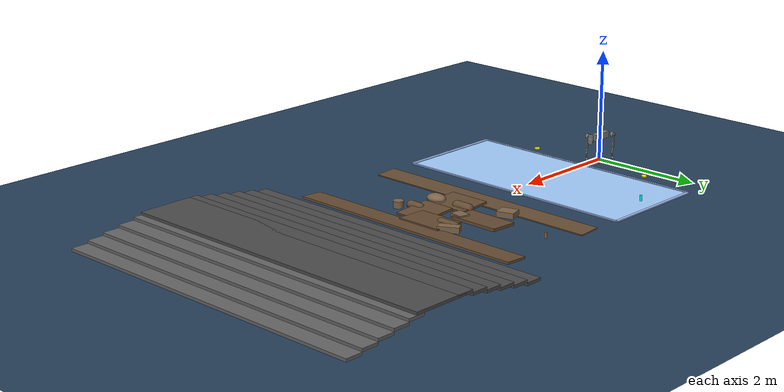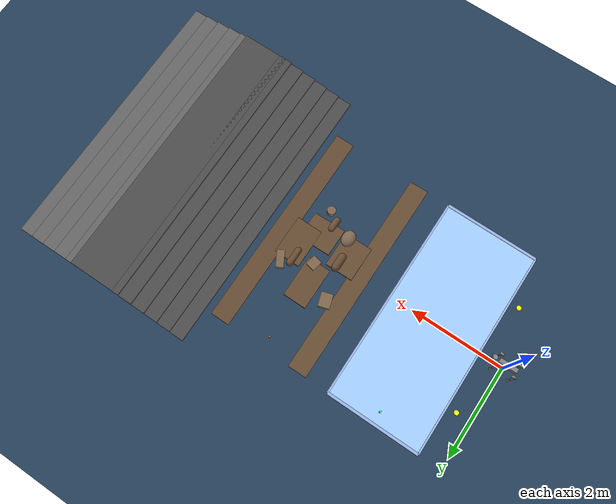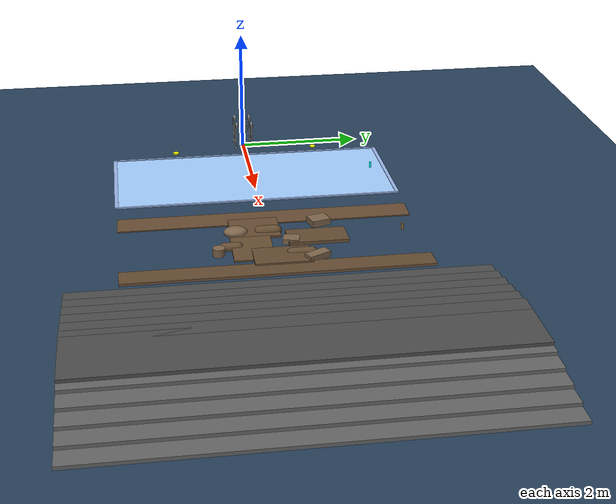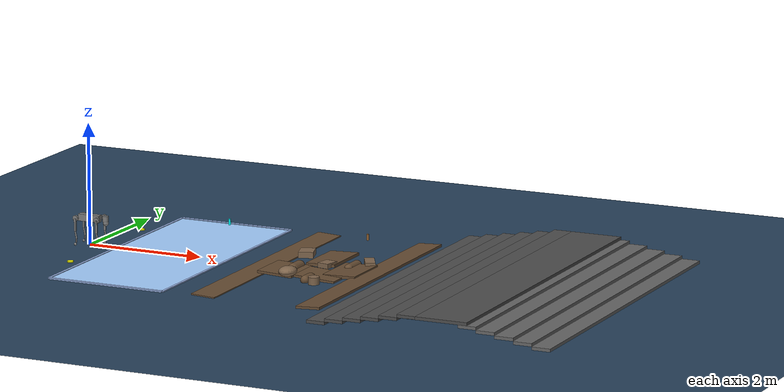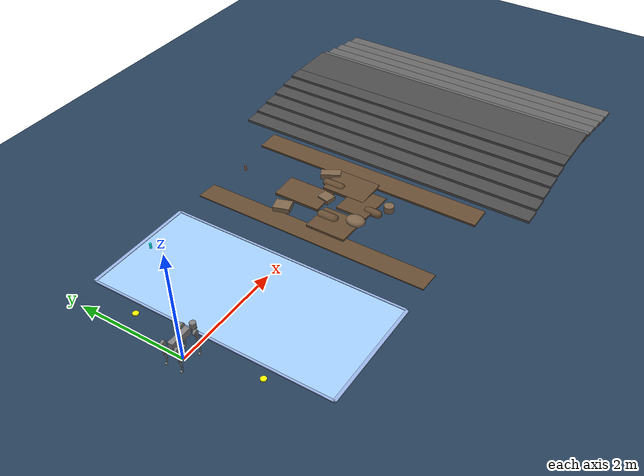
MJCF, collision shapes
<mujoco model="go2 ice scene">
  <include file="go2.xml"/>

  <statistic center="0 0 0.1" extent="0.8"/>

  <visual>
    <headlight diffuse="0.6 0.6 0.6" ambient="0.3 0.3 0.3" specular="0 0 0"/>
    <rgba haze="0.15 0.25 0.35 1"/>
    <global azimuth="-130" elevation="-20"/>
  </visual>

  <asset>
    <texture type="skybox" builtin="gradient" rgb1="0.3 0.5 0.7" rgb2="0 0 0" width="512" height="3072"/>
    <texture type="2d" name="groundplane" builtin="checker" mark="edge" rgb1="0.2 0.3 0.4" rgb2="0.1 0.2 0.3"
      markrgb="0.8 0.8 0.8" width="300" height="300"/>
    <material name="groundplane" texture="groundplane" texuniform="true" texrepeat="5 5" reflectance="0.2"/>

    <!-- Ice material -->
    <texture type="2d" name="ice_texture" builtin="flat" rgb1="0.8 0.9 1.0" width="100" height="100"/>
    <material name="ice" texture="ice_texture" rgba="0.8 0.9 1.0 0.9" reflectance="0.8" shininess="0.9"/>

    <!-- Ice border material -->
    <material name="ice_border" rgba="0.6 0.7 0.9 1" reflectance="0.3" shininess="0.5"/>

    <!-- Terrain materials -->
    <material name="terrain_rock" rgba="0.5 0.4 0.3 1" reflectance="0.1" shininess="0.2"/>
    <material name="terrain_dirt" rgba="0.4 0.3 0.2 1" reflectance="0.05" shininess="0.1"/>

    <!-- Stair materials -->
    <material name="stair_up" rgba="0.3 0.3 0.3 1" reflectance="0.05" shininess="0.1"/>
    <material name="stair_down" rgba="0.4 0.4 0.4 1" reflectance="0.05" shininess="0.1"/>
  </asset>

  <worldbody>
    <light pos="0 0 1.5" dir="0 0 -1" directional="true"/>
    <geom name="floor" size="0 0 0.05" type="plane" material="groundplane"/>

    <!-- Ice floor section with reduced but still low friction for better traversability -->
    <geom name="ice_floor" pos="1.5 0 0.001" type="box" size="1.0 2.25 0.005"
          material="ice" friction="0.12 0.08 0.004"/>

    <!-- Visual borders around ice -->
    <geom name="ice_border_1" pos="0.5 0 0.006" type="box" size="0.02 2.25 0.01"
          material="ice_border"/>
    <geom name="ice_border_2" pos="2.5 0 0.006" type="box" size="0.02 2.25 0.01"
          material="ice_border"/>
    <geom name="ice_border_3" pos="1.5 2.25 0.006" type="box" size="1.0 0.03 0.01"
          material="ice_border"/>
    <geom name="ice_border_4" pos="1.5 -2.25 0.006" type="box" size="1.0 0.03 0.01"
          material="ice_border"/>

    <!-- Ice warning signs (small visual markers) -->
    <geom name="warning_1" pos="0.3 1.2 0.02" type="cylinder" size="0.05 0.01"
          rgba="1 1 0 1"/>
    <geom name="warning_2" pos="0.3 -1.2 0.02" type="cylinder" size="0.05 0.01"
          rgba="1 1 0 1"/>

    <!-- UNEVEN TERRAIN SECTION (after ice) - Made more traversable -->
    <!-- Smaller rocks and obstacles -->
    <geom name="rock_1" pos="3.5 0.8 0.05" type="box" size="0.12 0.15 0.05"
          material="terrain_rock" euler="0 0 0.3"/>
    <geom name="rock_2" pos="3.8 -0.5 0.08" type="ellipsoid" size="0.14 0.18 0.08"
          material="terrain_rock"/>
    <geom name="rock_3" pos="4.1 0.3 0.04" type="box" size="0.10 0.12 0.04"
          material="terrain_rock" euler="0 0 -0.2"/>
    <geom name="rock_4" pos="4.4 -0.8 0.06" type="cylinder" size="0.09 0.06"
          material="terrain_rock"/>
    <geom name="rock_5" pos="4.7 0.6 0.05" type="box" size="0.08 0.18 0.05"
          material="terrain_rock" euler="0 0 0.5"/>

    <!-- Gentler ground patches with reduced slopes -->
    <geom name="patch_1" pos="3.6 -0.2 0.02" type="box" size="0.3 0.375 0.02"
          material="terrain_dirt" euler="0 0.05 0"/>
    <geom name="patch_2" pos="4.0 0.7 0.025" type="box" size="0.25 0.45 0.025"
          material="terrain_dirt" euler="0 -0.04 0"/>
    <geom name="patch_3" pos="4.3 -0.3 0.02" type="box" size="0.35 0.3 0.02"
          material="terrain_dirt" euler="0 0.06 0"/>
    <geom name="patch_4" pos="4.6 0.1 0.025" type="box" size="0.28 0.42 0.025"
          material="terrain_dirt" euler="0 -0.03 0"/>

    <!-- Smaller bumps -->
    <geom name="bump_1" pos="3.7 0.0 0.015" type="capsule" size="0.09 0.12"
          material="terrain_dirt" euler="1.57 0 0"/>
    <geom name="bump_2" pos="4.2 -0.6 0.02" type="capsule" size="0.075 0.10"
          material="terrain_dirt" euler="1.57 0 0.8"/>
    <geom name="bump_3" pos="4.5 0.4 0.02" type="capsule" size="0.075 0.15"
          material="terrain_dirt" euler="1.57 0 -0.4"/>

    <!-- Add transition ramps to make it easier to enter/exit this section -->
    <geom name="transition_ramp_1" pos="3.2 0 0.01" type="box" size="0.2 2.25 0.01"
          material="terrain_dirt" euler="0 0.05 0"/>
    <geom name="transition_ramp_2" pos="5.0 0 0.02" type="box" size="0.2 2.25 0.02"
          material="terrain_dirt" euler="0 -0.05 0"/>

    <!-- STAIRS SECTION - Reduced step height from 8cm to 5cm -->
    <!-- Ascending stairs with step height of 5 cm -->
    <geom name="stair_1" pos="5.5 0 0.025" type="box" size="0.15 3.0 0.025" material="stair_up"/>
    <geom name="stair_2" pos="5.8 0 0.075" type="box" size="0.15 3.0 0.025" material="stair_up"/>
    <geom name="stair_3" pos="6.1 0 0.125" type="box" size="0.15 3.0 0.025" material="stair_up"/>
    <geom name="stair_4" pos="6.4 0 0.175" type="box" size="0.15 3.0 0.025" material="stair_up"/>
    <geom name="stair_5" pos="6.7 0 0.225" type="box" size="0.15 3.0 0.025" material="stair_up"/>
    <geom name="stair_6" pos="7.0 0 0.275" type="box" size="0.15 3.0 0.025" material="stair_up"/>

    <!-- Platform at top -->
    <geom name="platform" pos="7.5 0 0.275" type="box" size="0.5 3.0 0.025" material="stair_up"/>

    <!-- Descending stairs -->
    <geom name="stair_d1" pos="8.0 0 0.225" type="box" size="0.15 3.0 0.025" material="stair_down"/>
    <geom name="stair_d2" pos="8.3 0 0.175" type="box" size="0.15 3.0 0.025" material="stair_down"/>
    <geom name="stair_d3" pos="8.6 0 0.125" type="box" size="0.15 3.0 0.025" material="stair_down"/>
    <geom name="stair_d4" pos="8.9 0 0.075" type="box" size="0.15 3.0 0.025" material="stair_down"/>
    <geom name="stair_d5" pos="9.2 0 0.025" type="box" size="0.15 3.0 0.025" material="stair_down"/>

    <!-- Section markers for navigation -->
    <geom name="marker_ice" pos="1.5 2.0 0.1" type="cylinder" size="0.02 0.05"
          rgba="0 1 1 1"/>
    <geom name="marker_terrain" pos="4.0 2.0 0.1" type="cylinder" size="0.02 0.05"
          rgba="0.6 0.4 0.2 1"/>
    <geom name="marker_stairs" pos="6.5 2.0 0.1" type="cylinder" size="0.02 0.05"
          rgba="0.5 0.5 0.5 1"/>
  </worldbody>
</mujoco>

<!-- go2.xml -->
<mujoco model="go2">
  <compiler angle="radian" meshdir="assets" autolimits="true" />

  <option cone="elliptic" impratio="100" />

  <default>
    <default class="go2">
      <geom friction="0.4" margin="0.001" condim="1"/>
      <joint axis="0 1 0" damping="0.1" armature="0.01" frictionloss="0.2"/>
      <motor ctrlrange="-23.7 23.7"/>
      <default class="abduction">
        <joint axis="1 0 0" range="-1.0472 1.0472"/>
      </default>
      <default class="hip">
        <default class="front_hip">
          <joint range="-1.5708 3.4907"/>
        </default>
        <default class="back_hip">
          <joint range="-0.5236 4.5379"/>
        </default>
      </default>
      <default class="knee">
        <joint range="-2.7227 -0.83776"/>
        <motor ctrlrange="-45.43 45.43"/>
      </default>
      <default class="visual">
        <geom type="mesh" contype="0" conaffinity="0" group="2"/>
      </default>
      <default class="collision">
        <geom group="3"/>
        <default class="foot">
          <geom size="0.022" pos="-0.002 0 -0.213" priority="1" condim="6"
            friction="0.4 0.02 0.01"/>
        </default>
      </default>
    </default>
  </default>

  <asset>
    <material name="metal" rgba=".9 .95 .95 1" />
    <material name="black" rgba="0 0 0 1" />
    <material name="white" rgba="1 1 1 1" />
    <material name="gray" rgba="0.671705 0.692426 0.774270 1" />

    <mesh file="base_0.obj" />
    <mesh file="base_1.obj" />
    <mesh file="base_2.obj" />
    <mesh file="base_3.obj" />
    <mesh file="base_4.obj" />
    <mesh file="hip_0.obj" />
    <mesh file="hip_1.obj" />
    <mesh file="thigh_0.obj" />
    <mesh file="thigh_1.obj" />
    <mesh file="thigh_mirror_0.obj" />
    <mesh file="thigh_mirror_1.obj" />
    <mesh file="calf_0.obj" />
    <mesh file="calf_1.obj" />
    <mesh file="calf_mirror_0.obj" />
    <mesh file="calf_mirror_1.obj" />
    <mesh file="foot.obj" />
  </asset>

  <worldbody>
    <body name="base_link" pos="0 0 0.445" childclass="go2">
      <inertial pos="0.021112 0 -0.005366" quat="-0.000543471 0.713435 -0.00173769 0.700719"
        mass="6.921"
        diaginertia="0.107027 0.0980771 0.0244531" />
      <freejoint />
      <geom mesh="base_0" material="black" class="visual" />
      <geom mesh="base_1" material="black" class="visual" />
      <geom mesh="base_2" material="black" class="visual" />
      <geom mesh="base_3" material="white" class="visual" />
      <geom mesh="base_4" material="gray" class="visual" />
      <geom size="0.1881 0.04675 0.057" type="box" class="collision" />
      <geom size="0.05 0.045" pos="0.285 0 0.01" type="cylinder" class="collision" />
      <geom size="0.047" pos="0.293 0 -0.06" class="collision" />
      <site name="imu" pos="-0.02557 0 0.04232" />
      <camera
        name="Gurukul_depth"
        pos="0.33 0 0.08"
        xyaxes="0 -1 0 0.3420201433 0 0.9396926208"
        resolution="106 60"
        focal="0.11041 0.11041"
        sensorsize="0.20955 0.12240"
        principalpixel="0 0"
      />
      <body name="FL_hip" pos="0.1934 0.0465 0">
        <inertial pos="-0.0054 0.00194 -0.000105" quat="0.497014 0.499245 0.505462 0.498237"
          mass="0.678"
          diaginertia="0.00088403 0.000596003 0.000479967" />
        <joint name="FL_hip_joint" class="abduction" />
        <geom mesh="hip_0" material="metal" class="visual" />
        <geom mesh="hip_1" material="gray" class="visual" />
        <geom size="0.046 0.02" pos="0 0.08 0" quat="1 1 0 0" type="cylinder" class="collision" />
        <body name="FL_thigh" pos="0 0.0955 0">
          <inertial pos="-0.00374 -0.0223 -0.0327" quat="0.829533 0.0847635 -0.0200632 0.551623"
            mass="1.152"
            diaginertia="0.00594973 0.00584149 0.000878787" />
          <joint name="FL_thigh_joint" class="front_hip" />
          <geom mesh="thigh_0" material="metal" class="visual" />
          <geom mesh="thigh_1" material="gray" class="visual" />
          <geom size="0.1065 0.01225 0.017" pos="0 0 -0.1065" quat="0.707107 0 0.707107 0"
            type="box" class="collision" />
          <body name="FL_calf" pos="0 0 -0.213">
            <inertial pos="0.00629595 -0.000622121 -0.141417"
              quat="0.710672 0.00154099 -0.00450087 0.703508"
              mass="0.241352" diaginertia="0.0014901 0.00146356 5.31397e-05" />
            <joint name="FL_calf_joint" class="knee" />
            <geom mesh="calf_0" material="gray" class="visual" />
            <geom mesh="calf_1" material="black" class="visual" />
            <geom size="0.012 0.06" pos="0.008 0 -0.06" quat="0.994493 0 -0.104807 0"
              type="cylinder" class="collision" />
            <geom size="0.011 0.0325" pos="0.02 0 -0.148" quat="0.999688 0 0.0249974 0"
              type="cylinder" class="collision" />
            <geom pos="0 0 -0.213" mesh="foot" class="visual" material="black" />
            <geom name="FL" class="foot" />
            <body name="FL_foot" pos="0 0 -0.213" />
          </body>
        </body>
      </body>
      <body name="FR_hip" pos="0.1934 -0.0465 0">
        <inertial pos="-0.0054 -0.00194 -0.000105" quat="0.498237 0.505462 0.499245 0.497014"
          mass="0.678"
          diaginertia="0.00088403 0.000596003 0.000479967" />
        <joint name="FR_hip_joint" class="abduction" />
        <geom mesh="hip_0" material="metal" class="visual" quat="4.63268e-05 1 0 0" />
        <geom mesh="hip_1" material="gray" class="visual" quat="4.63268e-05 1 0 0" />
        <geom size="0.046 0.02" pos="0 -0.08 0" quat="0.707107 0.707107 0 0" type="cylinder"
          class="collision" />
        <body name="FR_thigh" pos="0 -0.0955 0">
          <inertial pos="-0.00374 0.0223 -0.0327" quat="0.551623 -0.0200632 0.0847635 0.829533"
            mass="1.152"
            diaginertia="0.00594973 0.00584149 0.000878787" />
          <joint name="FR_thigh_joint" class="front_hip" />
          <geom mesh="thigh_mirror_0" material="metal" class="visual" />
          <geom mesh="thigh_mirror_1" material="gray" class="visual" />
          <geom size="0.1065 0.01225 0.017" pos="0 0 -0.1065" quat="0.707107 0 0.707107 0"
            type="box" class="collision" />
          <body name="FR_calf" pos="0 0 -0.213">
            <inertial pos="0.00629595 0.000622121 -0.141417"
              quat="0.703508 -0.00450087 0.00154099 0.710672"
              mass="0.241352" diaginertia="0.0014901 0.00146356 5.31397e-05" />
            <joint name="FR_calf_joint" class="knee" />
            <geom mesh="calf_mirror_0" material="gray" class="visual" />
            <geom mesh="calf_mirror_1" material="black" class="visual" />
            <geom size="0.013 0.06" pos="0.01 0 -0.06" quat="0.995004 0 -0.0998334 0"
              type="cylinder" class="collision" />
            <geom size="0.011 0.0325" pos="0.02 0 -0.148" quat="0.999688 0 0.0249974 0"
              type="cylinder" class="collision" />
            <geom pos="0 0 -0.213" mesh="foot" class="visual" material="black" />
            <geom name="FR" class="foot" />
            <body name="FR_foot" pos="0 0 -0.213" />
          </body>
        </body>
      </body>
      <body name="RL_hip" pos="-0.1934 0.0465 0">
        <inertial pos="0.0054 0.00194 -0.000105" quat="0.505462 0.498237 0.497014 0.499245"
          mass="0.678"
          diaginertia="0.00088403 0.000596003 0.000479967" />
        <joint name="RL_hip_joint" class="abduction" />
        <geom mesh="hip_0" material="metal" class="visual" quat="4.63268e-05 0 1 0" />
        <geom mesh="hip_1" material="gray" class="visual" quat="4.63268e-05 0 1 0" />
        <geom size="0.046 0.02" pos="0 0.08 0" quat="0.707107 0.707107 0 0" type="cylinder"
          class="collision" />
        <body name="RL_thigh" pos="0 0.0955 0">
          <inertial pos="-0.00374 -0.0223 -0.0327" quat="0.829533 0.0847635 -0.0200632 0.551623"
            mass="1.152"
            diaginertia="0.00594973 0.00584149 0.000878787" />
          <joint name="RL_thigh_joint" class="back_hip" />
          <geom mesh="thigh_0" material="metal" class="visual" />
          <geom mesh="thigh_1" material="gray" class="visual" />
          <geom size="0.1065 0.01225 0.017" pos="0 0 -0.1065" quat="0.707107 0 0.707107 0"
            type="box" class="collision" />
          <body name="RL_calf" pos="0 0 -0.213">
            <inertial pos="0.00629595 -0.000622121 -0.141417"
              quat="0.710672 0.00154099 -0.00450087 0.703508"
              mass="0.241352" diaginertia="0.0014901 0.00146356 5.31397e-05" />
            <joint name="RL_calf_joint" class="knee" />
            <geom mesh="calf_0" material="gray" class="visual" />
            <geom mesh="calf_1" material="black" class="visual" />
            <geom size="0.013 0.06" pos="0.01 0 -0.06" quat="0.995004 0 -0.0998334 0"
              type="cylinder" class="collision" />
            <geom size="0.011 0.0325" pos="0.02 0 -0.148" quat="0.999688 0 0.0249974 0"
              type="cylinder" class="collision" />
            <geom pos="0 0 -0.213" mesh="foot" class="visual" material="black" />
            <geom name="RL" class="foot" />
            <body name="RL_foot" pos="0 0 -0.213" />
          </body>
        </body>
      </body>
      <body name="RR_hip" pos="-0.1934 -0.0465 0">
        <inertial pos="0.0054 -0.00194 -0.000105" quat="0.499245 0.497014 0.498237 0.505462"
          mass="0.678"
          diaginertia="0.00088403 0.000596003 0.000479967" />
        <joint name="RR_hip_joint" class="abduction" />
        <geom mesh="hip_0" material="metal" class="visual"
          quat="2.14617e-09 4.63268e-05 4.63268e-05 -1" />
        <geom mesh="hip_1" material="gray" class="visual"
          quat="2.14617e-09 4.63268e-05 4.63268e-05 -1" />
        <geom size="0.046 0.02" pos="0 -0.08 0" quat="0.707107 0.707107 0 0" type="cylinder"
          class="collision" />
        <body name="RR_thigh" pos="0 -0.0955 0">
          <inertial pos="-0.00374 0.0223 -0.0327" quat="0.551623 -0.0200632 0.0847635 0.829533"
            mass="1.152"
            diaginertia="0.00594973 0.00584149 0.000878787" />
          <joint name="RR_thigh_joint" class="back_hip" />
          <geom mesh="thigh_mirror_0" material="metal" class="visual" />
          <geom mesh="thigh_mirror_1" material="gray" class="visual" />
          <geom size="0.1065 0.01225 0.017" pos="0 0 -0.1065" quat="0.707107 0 0.707107 0"
            type="box" class="collision" />
          <body name="RR_calf" pos="0 0 -0.213">
            <inertial pos="0.00629595 0.000622121 -0.141417"
              quat="0.703508 -0.00450087 0.00154099 0.710672"
              mass="0.241352" diaginertia="0.0014901 0.00146356 5.31397e-05" />
            <joint name="RR_calf_joint" class="knee" />
            <geom mesh="calf_mirror_0" material="gray" class="visual" />
            <geom mesh="calf_mirror_1" material="black" class="visual" />
            <geom size="0.013 0.06" pos="0.01 0 -0.06" quat="0.995004 0 -0.0998334 0"
              type="cylinder" class="collision" />
            <geom size="0.011 0.0325" pos="0.02 0 -0.148" quat="0.999688 0 0.0249974 0"
              type="cylinder" class="collision" />
            <geom pos="0 0 -0.213" mesh="foot" class="visual" material="black" />
            <geom name="RR" class="foot" />
            <body name="RR_foot" pos="0 0 -0.213" />
          </body>
        </body>
      </body>
    </body>
  </worldbody>

  <actuator>
    <motor class="abduction" name="FR_hip" joint="FR_hip_joint" />
    <motor class="hip" name="FR_thigh" joint="FR_thigh_joint" />
    <motor class="knee" name="FR_calf" joint="FR_calf_joint" />
    <motor class="abduction" name="FL_hip" joint="FL_hip_joint" />
    <motor class="hip" name="FL_thigh" joint="FL_thigh_joint" />
    <motor class="knee" name="FL_calf" joint="FL_calf_joint" />
    <motor class="abduction" name="RR_hip" joint="RR_hip_joint" />
    <motor class="hip" name="RR_thigh" joint="RR_thigh_joint" />
    <motor class="knee" name="RR_calf" joint="RR_calf_joint" />
    <motor class="abduction" name="RL_hip" joint="RL_hip_joint" />
    <motor class="hip" name="RL_thigh" joint="RL_thigh_joint" />
    <motor class="knee" name="RL_calf" joint="RL_calf_joint" />
  </actuator>

  <sensor>
    <jointpos name="FR_hip_pos" joint="FR_hip_joint" />
    <jointpos name="FR_thigh_pos" joint="FR_thigh_joint" />
    <jointpos name="FR_calf_pos" joint="FR_calf_joint" />
    <jointpos name="FL_hip_pos" joint="FL_hip_joint" />
    <jointpos name="FL_thigh_pos" joint="FL_thigh_joint" />
    <jointpos name="FL_calf_pos" joint="FL_calf_joint" />
    <jointpos name="RR_hip_pos" joint="RR_hip_joint" />
    <jointpos name="RR_thigh_pos" joint="RR_thigh_joint" />
    <jointpos name="RR_calf_pos" joint="RR_calf_joint" />
    <jointpos name="RL_hip_pos" joint="RL_hip_joint" />
    <jointpos name="RL_thigh_pos" joint="RL_thigh_joint" />
    <jointpos name="RL_calf_pos" joint="RL_calf_joint" />

    <jointvel name="FR_hip_vel" joint="FR_hip_joint" />
    <jointvel name="FR_thigh_vel" joint="FR_thigh_joint" />
    <jointvel name="FR_calf_vel" joint="FR_calf_joint" />
    <jointvel name="FL_hip_vel" joint="FL_hip_joint" />
    <jointvel name="FL_thigh_vel" joint="FL_thigh_joint" />
    <jointvel name="FL_calf_vel" joint="FL_calf_joint" />
    <jointvel name="RR_hip_vel" joint="RR_hip_joint" />
    <jointvel name="RR_thigh_vel" joint="RR_thigh_joint" />
    <jointvel name="RR_calf_vel" joint="RR_calf_joint" />
    <jointvel name="RL_hip_vel" joint="RL_hip_joint" />
    <jointvel name="RL_thigh_vel" joint="RL_thigh_joint" />
    <jointvel name="RL_calf_vel" joint="RL_calf_joint" />

    <jointactuatorfrc name="FR_hip_torque" joint="FR_hip_joint" noise="0.01" />
    <jointactuatorfrc name="FR_thigh_torque" joint="FR_thigh_joint" noise="0.01" />
    <jointactuatorfrc name="FR_calf_torque" joint="FR_calf_joint" noise="0.01" />
    <jointactuatorfrc name="FL_hip_torque" joint="FL_hip_joint" noise="0.01" />
    <jointactuatorfrc name="FL_thigh_torque" joint="FL_thigh_joint" noise="0.01" />
    <jointactuatorfrc name="FL_calf_torque" joint="FL_calf_joint" noise="0.01" />
    <jointactuatorfrc name="RR_hip_torque" joint="RR_hip_joint" noise="0.01" />
    <jointactuatorfrc name="RR_thigh_torque" joint="RR_thigh_joint" noise="0.01" />
    <jointactuatorfrc name="RR_calf_torque" joint="RR_calf_joint" noise="0.01" />
    <jointactuatorfrc name="RL_hip_torque" joint="RL_hip_joint" noise="0.01" />
    <jointactuatorfrc name="RL_thigh_torque" joint="RL_thigh_joint" noise="0.01" />
    <jointactuatorfrc name="RL_calf_torque" joint="RL_calf_joint" noise="0.01" />

    <framequat name="imu_quat" objtype="site" objname="imu" />
    <gyro name="imu_gyro" site="imu" />
    <accelerometer name="imu_acc" site="imu" />

    <framepos name="frame_pos" objtype="site" objname="imu" />
    <framelinvel name="frame_vel" objtype="site" objname="imu" />
  </sensor>

  <keyframe>
    <key name="home" qpos="0 0 0.27 1 0 0 0 0 0.9 -1.8 0 0.9 -1.8 0 0.9 -1.8 0 0.9 -1.8"
      ctrl="0 0.9 -1.8 0 0.9 -1.8 0 0.9 -1.8 0 0.9 -1.8" />
  </keyframe>
</mujoco>
